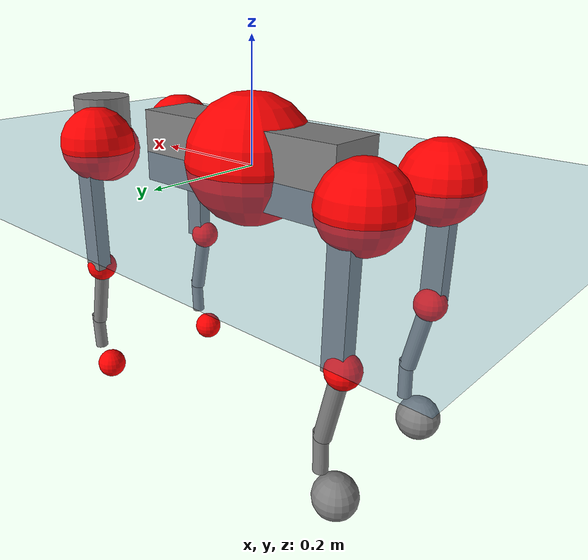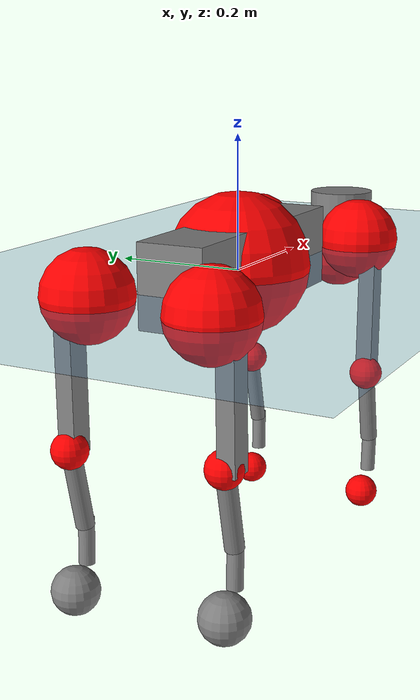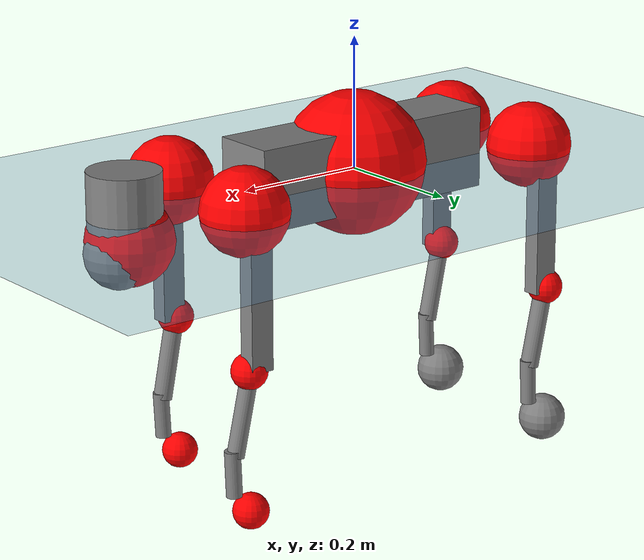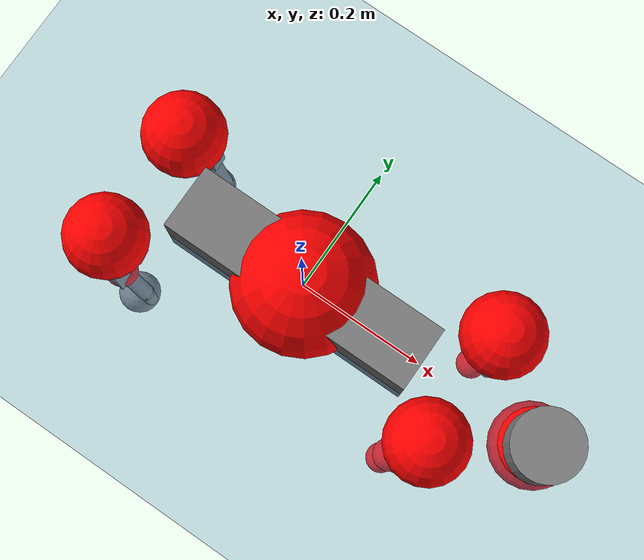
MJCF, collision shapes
<mujoco model="go2">
  <compiler angle="radian" assetdir="assets" balanceinertia="true" inertiafromgeom="false"/>

  <option timestep="0.005" density="1.2" viscosity="2e-05"/>

  <size nkey="1"/>

  <visual>
    <quality shadowsize="8192"/>
    <map shadowclip="0.5"/>
  </visual>

  <default>
    <default class="/">
      <geom contype="0" conaffinity="0" group="1" solref="-1000 -80"/>
      <site size="0.01 0.005 0.005" group="5"/>
      <general forcelimited="true" biastype="affine" gainprm="20" biasprm="0 -20 -0.5"/>
      <default class="go2">
        <joint armature="0.01" damping="0.01" frictionloss="0.2"/>
        <geom condim="1" margin="0.001"/>
        <default class="visual">
          <geom type="mesh" group="2"/>
        </default>
        <default class="collision">
          <geom group="3"/>
          <default class="foot">
            <geom size="0.022 0 0" condim="6" priority="1" friction="0.8 0.02 0.01" solimp="0.015 1 0.022"/>
          </default>
        </default>
        <default class="reward_collision_sphere">
          <geom group="5" rgba="1 0 0 1"/>
        </default>
      </default>
    </default>
  </default>

  <asset>
    <texture type="skybox" colorspace="auto" name="//unnamed_texture_0" builtin="gradient" rgb1="0.95 0.95 0.95" rgb2="0.95 0.95 0.95" width="100" height="600"/>
    <texture type="2d" colorspace="auto" name="texplane" builtin="checker" rgb1="0.345 0.575 0.748" rgb2="0.345 0.575 0.748" markrgb="1 1 1" width="512" height="512"/>
    <material name="MatPlane" class="/" texture="texplane" texuniform="true" texrepeat="2 2" specular="0.9"/>
    <material name="metal" class="/" rgba="0.9 0.95 0.95 1"/>
    <material name="black" class="/" rgba="0 0 0 1"/>
    <material name="white" class="/"/>
    <material name="gray" class="/" rgba="0.671705 0.692426 0.77427 1"/>
    <mesh name="base_0" class="/" file="base_0.obj"/>
    <mesh name="base_1" class="/" file="base_1.obj"/>
    <mesh name="base_2" class="/" file="base_2.obj"/>
    <mesh name="base_3" class="/" file="base_3.obj"/>
    <mesh name="base_4" class="/" file="base_4.obj"/>
    <mesh name="hip_0" class="/" file="hip_0.obj"/>
    <mesh name="hip_1" class="/" file="hip_1.obj"/>
    <mesh name="thigh_0" class="/" file="thigh_0.obj"/>
    <mesh name="thigh_1" class="/" file="thigh_1.obj"/>
    <mesh name="thigh_mirror_0" class="/" file="thigh_mirror_0.obj"/>
    <mesh name="thigh_mirror_1" class="/" file="thigh_mirror_1.obj"/>
    <mesh name="calf_0" class="/" file="calf_0.obj"/>
    <mesh name="calf_1" class="/" file="calf_1.obj"/>
    <mesh name="calf_mirror_0" class="/" file="calf_mirror_0.obj"/>
    <mesh name="calf_mirror_1" class="/" file="calf_mirror_1.obj"/>
    <mesh name="foot" class="/" file="foot.obj"/>
  </asset>

  <worldbody>
    <geom name="floor" class="/" size="100 100 0.125" type="plane" group="0" material="MatPlane"/>
    <light name="toplight_shadow" class="/" pos="0 0 5" dir="0.0990148 0.0990148 -0.990148" type="directional" ambient="0.04 0.04 0.04" diffuse="0.55 0.55 0.55" specular="0.12 0.12 0.12"/>
    <light name="toplight_fill" class="/" pos="0 0 5" dir="0.0990148 0.0990148 -0.990148" type="directional" castshadow="false" ambient="0.04 0.04 0.04" diffuse="0.3 0.3 0.3" specular="0.08 0.08 0.08"/>
    <body name="trunk" childclass="go2" pos="0.000729277 -3.312e-05 0.00998792" quat="1 -4.06866e-05 -5.82304e-05 7.72007e-05">
      <inertial pos="0.0292208 -0.0138355 -0.016393" quat="-0.000408559 0.713674 -0.00180973 0.700475" mass="9.16531" diaginertia="0.596005 0.0363367 0.0277175"/>
      <joint name="//unnamed_joint_0" type="free" armature="0" damping="0" frictionloss="0"/>
      <geom name="//unnamed_geom_1" class="visual" material="black" mesh="base_0"/>
      <geom name="//unnamed_geom_2" class="visual" material="black" mesh="base_1"/>
      <geom name="//unnamed_geom_3" class="visual" material="black" mesh="base_2"/>
      <geom name="//unnamed_geom_4" class="visual" material="white" mesh="base_3"/>
      <geom name="//unnamed_geom_5" class="visual" material="gray" mesh="base_4"/>
      <geom name="trunk_1" class="collision" size="0.203718 0.0506317 0.0617327" type="box"/>
      <geom name="trunk_2" class="collision" size="0.0541515 0.0487364" pos="0.408541 0 0.0100695" type="cylinder"/>
      <geom name="trunk_3" class="collision" size="0.0509024" pos="0.420009 0 -0.0604168"/>
      <geom name="//unnamed_geom_9" class="reward_collision_sphere" size="0.108303"/>
      <geom name="//unnamed_geom_10" class="reward_collision_sphere" size="0.0649818" pos="0.401373 0 -0.0453126"/>
      <site name="imu" pos="-0.0638111 0.0398296 0.0135904" size="0.0108303"/>
      <camera name="track" pos="0 -1.61734 0" quat="0.707107 0.707107 0 0" mode="trackcom"/>
      <camera name="ego_camera" pos="0.447245 0 0.0453126" quat="-0.5 -0.5 0.5 0.5"/>
      <body name="FL_hip" pos="0.277663 0.0465211 -0.00125894" quat="0.999998 -0.00156896 0.00142175 0.000245535">
        <inertial pos="0.00446579 0.00185698 0.00755435" quat="0.503029 0.492925 0.511543 0.49225" mass="0.960451" diaginertia="0.00568829 0.000239325 0.000471931"/>
        <joint name="FL_hip_joint" pos="0 0 0" axis="0.999963 -0.00777923 -0.00380368" range="-0.916086 1.06638" armature="0.00571912" damping="0" frictionloss="0.343385"/>
        <geom name="//unnamed_geom_11" class="visual" material="metal" mesh="hip_0"/>
        <geom name="//unnamed_geom_12" class="visual" material="gray" mesh="hip_1"/>
        <geom name="//unnamed_geom_13" class="collision" size="0.0498194 0.0216606" pos="0 0.0646934 0" quat="0.707107 0.707107 0 0" type="cylinder"/>
        <geom name="//unnamed_geom_14" class="reward_collision_sphere" size="0.0649818" pos="0 0.0566067 0"/>
        <body name="FL_thigh" pos="-0.00171904 0.079502 -0.00655969" quat="1 -0.000146252 0.000240803 7.75317e-05">
          <inertial pos="-0.00499306 -0.0186341 -0.0250976" quat="0.829033 0.0841672 -0.0221948 0.552384" mass="1.60796" diaginertia="0.0346483 0.00201864 0.00124472"/>
          <joint name="FL_thigh_joint" pos="0 0 0" axis="0.00565389 0.999418 0.0336278" stiffness="0.0237651" range="-1.38672 3.36011" armature="0.00807964" damping="0.0125114" frictionloss="0.199147"/>
          <geom name="//unnamed_geom_15" class="visual" material="metal" mesh="thigh_0"/>
          <geom name="//unnamed_geom_16" class="visual" material="gray" mesh="thigh_1"/>
          <geom name="//unnamed_geom_17" class="collision" size="0.115343 0.0132671 0.0184115" pos="0 0 -0.10724" quat="0.707107 0 0.707107 0" type="box"/>
          <body name="FL_calf" pos="0.00656914 -0.00980202 -0.225168" quat="0.999978 -0.00145853 -0.00585419 0.00278735">
            <inertial pos="0.0100758 -0.000151691 -0.143354" quat="0.708744 0.00115731 -0.00702041 0.70543" mass="0.371181" diaginertia="0.00883088 0.000522175 6.13726e-05"/>
            <joint name="FL_calf_joint" pos="0 0 0" axis="0.0191109 0.999769 0.00979304" range="-2.76493 -0.778337" armature="0.0147728" damping="0" frictionloss="0.325102"/>
            <geom name="//unnamed_geom_18" class="visual" material="gray" mesh="calf_0"/>
            <geom name="//unnamed_geom_19" class="visual" material="black" mesh="calf_1"/>
            <geom name="FL_calf0" class="collision" size="0.0129964 0.0649818" pos="0.0114678 0 -0.0604168" quat="0.994493 0 -0.104807 0" type="cylinder"/>
            <geom name="//unnamed_geom_21" class="collision" size="0.0119133 0.0351985" pos="0.0286695 0 -0.149028" quat="0.999688 0 0.0249974 0" type="cylinder"/>
            <geom name="//unnamed_geom_22" class="visual" pos="0 0 -0.21448" quat="1 0 0 0" material="black" mesh="foot"/>
            <geom name="FL_foot" class="foot" size="0.0136413" pos="-0.00286695 0 -0.21448"/>
            <geom name="//unnamed_geom_24" class="reward_collision_sphere" size="0.0270758"/>
            <geom name="//unnamed_geom_25" class="reward_collision_sphere" size="0.0270758" pos="-0.00286695 0 -0.21448"/>
            <site name="FL_foot" class="foot" pos="-0.00286695 0 -0.21448" size="0.0108303"/>
          </body>
        </body>
      </body>
      <body name="FR_hip" pos="0.271996 -0.0292121 0.000916256" quat="0.999984 -0.000586149 0.000860232 0.00562918">
        <inertial pos="-0.00790218 -0.00401829 0.00264556" quat="0.498772 0.507599 0.499744 0.493787" mass="0.937912" diaginertia="0.00628642 0.00026081 0.00048336"/>
        <joint name="FR_hip_joint" pos="0 0 0" axis="0.999995 0.00317367 -0.000576751" range="-1.26493 1.31104" armature="0.0107513" damping="0" frictionloss="0.314695"/>
        <geom name="//unnamed_geom_26" class="visual" pos="0 -1.72733e-09 -7.40888e-08" quat="4.63268e-05 1 0 0" material="metal" mesh="hip_0"/>
        <geom name="//unnamed_geom_27" class="visual" pos="0 -2.80021e-09 1.8325e-07" quat="4.63268e-05 1 0 0" material="gray" mesh="hip_1"/>
        <geom name="//unnamed_geom_28" class="collision" size="0.0498194 0.0216606" pos="0 -0.0646934 0" quat="0.707107 0.707107 0 0" type="cylinder"/>
        <geom name="//unnamed_geom_29" class="reward_collision_sphere" size="0.0649818" pos="0 -0.0566067 0"/>
        <body name="FR_thigh" pos="-0.0146116 -0.085375 -0.000503432" quat="0.999997 0.0020449 -0.000633758 0.000934456">
          <inertial pos="-0.00518016 0.020301 -0.0328653" quat="0.549557 -0.0183507 0.0880673 0.830599" mass="1.29904" diaginertia="0.0341375 0.00177698 0.00070985"/>
          <joint name="FR_thigh_joint" pos="0 0 0" axis="0.0231888 -0.997701 -0.0636814" range="-3.79355 1.83559" armature="0.010923" damping="0.0580149" frictionloss="0.257801"/>
          <geom name="//unnamed_geom_30" class="visual" material="metal" mesh="thigh_mirror_0"/>
          <geom name="//unnamed_geom_31" class="visual" material="gray" mesh="thigh_mirror_1"/>
          <geom name="//unnamed_geom_32" class="collision" size="0.115343 0.0132671 0.0184115" pos="0 0 -0.10724" quat="0.707107 0 0.707107 0" type="box"/>
          <body name="FR_calf" pos="-0.0135804 -0.00343712 -0.222065" quat="0.999999 -0.00154501 -0.000257109 -0.000139306">
            <inertial pos="0.0150026 0.0042839 -0.15684" quat="0.707395 -0.0142311 -0.0188755 0.706423" mass="0.370339" diaginertia="0.00815932 0.000512364 5.56584e-05"/>
            <joint name="FR_calf_joint" pos="0 0 0" axis="-0.0755336 -0.997075 0.0116791" stiffness="0.0281802" range="0.747491 2.95615" armature="0.0118136" damping="0" frictionloss="0.38088"/>
            <geom name="//unnamed_geom_33" class="visual" material="gray" mesh="calf_mirror_0"/>
            <geom name="//unnamed_geom_34" class="visual" material="black" mesh="calf_mirror_1"/>
            <geom name="FR_calf0" class="collision" size="0.0140794 0.0649818" pos="0.0143348 0 -0.0604168" quat="0.995004 0 -0.0998334 0" type="cylinder"/>
            <geom name="//unnamed_geom_36" class="collision" size="0.0119133 0.0351985" pos="0.0286695 0 -0.149028" quat="0.999688 0 0.0249974 0" type="cylinder"/>
            <geom name="//unnamed_geom_37" class="visual" pos="0 0 -0.21448" quat="1 0 0 0" material="black" mesh="foot"/>
            <geom name="FR_foot" class="foot" size="0.0206265" pos="-0.00286695 0 -0.21448"/>
            <geom name="//unnamed_geom_39" class="reward_collision_sphere" size="0.0270758"/>
            <geom name="//unnamed_geom_40" class="reward_collision_sphere" size="0.0270758" pos="-0.00286695 0 -0.21448"/>
            <site name="FR_foot" class="foot" pos="-0.00286695 0 -0.21448" size="0.0108303"/>
          </body>
        </body>
      </body>
      <body name="RL_hip" pos="-0.27363 0.027357 -0.00179468" quat="1 0.000830119 -0.00014369 -0.000393895">
        <inertial pos="0.0150553 0.0134592 -0.002934" quat="0.473064 0.495793 0.462696 0.562416" mass="1.02588" diaginertia="0.00498399 0.000181938 0.00053745"/>
        <joint name="RL_hip_joint" pos="0 0 0" axis="-0.99874 -0.0411229 -0.0287629" stiffness="0.0530601" range="-1.12303 1.19306" armature="0.0113828" damping="0.0548586" frictionloss="0.134674"/>
        <geom name="//unnamed_geom_41" class="visual" pos="-3.71574e-09 0 -7.28372e-07" quat="4.63268e-05 0 1 0" material="metal" mesh="hip_0"/>
        <geom name="//unnamed_geom_42" class="visual" pos="-6.02367e-09 0 -6.45962e-07" quat="4.63268e-05 0 1 0" material="gray" mesh="hip_1"/>
        <geom name="//unnamed_geom_43" class="collision" size="0.0498194 0.0216606" pos="0 0.0646934 0" quat="0.707107 0.707107 0 0" type="cylinder"/>
        <geom name="//unnamed_geom_44" class="reward_collision_sphere" size="0.0649818" pos="0 0.0566067 0"/>
        <body name="RL_thigh" pos="0.00119895 0.0892873 -0.00451903" quat="0.999993 0.000595012 -0.000130505 -0.00382134">
          <inertial pos="8.04868e-06 -0.00819344 -0.0329974" quat="0.813856 0.0798517 -0.0122298 0.575423" mass="1.3907" diaginertia="0.0310909 0.00185042 0.0006886"/>
          <joint name="RL_thigh_joint" pos="0 0 0" axis="-0.0110221 0.999841 -0.0139963" range="-0.542363 4.55363" armature="0.0110755" damping="0.0323542" frictionloss="0.227942"/>
          <geom name="//unnamed_geom_45" class="visual" material="metal" mesh="thigh_0"/>
          <geom name="//unnamed_geom_46" class="visual" material="gray" mesh="thigh_1"/>
          <geom name="//unnamed_geom_47" class="collision" size="0.115343 0.0132671 0.0184115" pos="0 0 -0.10724" quat="0.707107 0 0.707107 0" type="box"/>
          <body name="RL_calf" pos="-0.0105932 0.000440773 -0.216241" quat="0.999983 -0.00106303 -0.00466352 -0.0032278">
            <inertial pos="-0.00183493 0.00479819 -0.132828" quat="0.711836 0.00026549 -0.00449022 0.702331" mass="0.284633" diaginertia="0.00768922 0.000340043 3.54762e-05"/>
            <joint name="RL_calf_joint" pos="0 0 0" axis="-0.0395208 0.999028 0.0195365" stiffness="0.00169912" range="-2.74345 -0.521234" armature="0.0108559" damping="0" frictionloss="0.138596"/>
            <geom name="//unnamed_geom_48" class="visual" material="gray" mesh="calf_0"/>
            <geom name="//unnamed_geom_49" class="visual" material="black" mesh="calf_1"/>
            <geom name="RL_calf0" class="collision" size="0.0140794 0.0649818" pos="0.0143348 0 -0.0604168" quat="0.995004 0 -0.0998334 0" type="cylinder"/>
            <geom name="//unnamed_geom_51" class="collision" size="0.0119133 0.0351985" pos="0.0286695 0 -0.149028" quat="0.999688 0 0.0249974 0" type="cylinder"/>
            <geom name="//unnamed_geom_52" class="visual" pos="0 0 -0.21448" quat="1 0 0 0" material="black" mesh="foot"/>
            <geom name="RL_foot" class="foot" size="0.0360596" pos="-0.00286695 0 -0.21448"/>
            <geom name="//unnamed_geom_54" class="reward_collision_sphere" size="0.0270758"/>
            <geom name="//unnamed_geom_55" class="reward_collision_sphere" size="0.0270758" pos="-0.00286695 0 -0.21448"/>
            <site name="RL_foot" class="foot" pos="-0.00286695 0 -0.21448" size="0.0108303"/>
          </body>
        </body>
      </body>
      <body name="RR_hip" pos="-0.277792 -0.0485932 -0.00630046" quat="0.999981 -0.00464012 0.000308412 -0.00399025">
        <inertial pos="0.00414013 -0.00885005 0.00659565" quat="0.560804 0.491057 0.470068 0.472651" mass="1.01351" diaginertia="0.00530919 0.000250969 0.000547256"/>
        <joint name="RR_hip_joint" pos="0 0 0" axis="-0.999641 -0.0267006 0.00207967" stiffness="0.0236428" range="-0.806851 0.969122" armature="0.0181371" damping="0.0220686" frictionloss="0.120336"/>
        <geom name="//unnamed_geom_56" class="visual" pos="3.69411e-09 -1.72733e-09 -6.54283e-07" quat="2.14617e-09 4.63268e-05 4.63268e-05 -1" material="metal" mesh="hip_0"/>
        <geom name="//unnamed_geom_57" class="visual" pos="6.07717e-09 -2.80021e-09 -8.29212e-07" quat="2.14617e-09 4.63268e-05 4.63268e-05 -1" material="gray" mesh="hip_1"/>
        <geom name="//unnamed_geom_58" class="collision" size="0.0498194 0.0216606" pos="0 -0.0646934 0" quat="0.707107 0.707107 0 0" type="cylinder"/>
        <geom name="//unnamed_geom_59" class="reward_collision_sphere" size="0.0649818" pos="0 -0.0566067 0"/>
        <body name="RR_thigh" pos="0.00234072 -0.0811653 0.0138681" quat="0.999999 -0.000372353 0.000637191 0.00072255">
          <inertial pos="-0.00522421 0.00262092 -0.0411327" quat="0.527547 -0.0668372 0.0959357 0.841441" mass="1.7212" diaginertia="0.0433589 0.00240584 0.00110522"/>
          <joint name="RR_thigh_joint" pos="0 0 0" axis="-0.03581 -0.998969 0.0278868" range="-4.66505 0.790974" armature="0.00186384" damping="0" frictionloss="0.162762"/>
          <geom name="//unnamed_geom_60" class="visual" material="metal" mesh="thigh_mirror_0"/>
          <geom name="//unnamed_geom_61" class="visual" material="gray" mesh="thigh_mirror_1"/>
          <geom name="//unnamed_geom_62" class="collision" size="0.115343 0.0132671 0.0184115" pos="0 0 -0.10724" quat="0.707107 0 0.707107 0" type="box"/>
          <body name="RR_calf" pos="-0.00146435 0.0109581 -0.217271" quat="0.999987 0.00386649 -0.00319456 0.00117473">
            <inertial pos="0.00168378 4.39852e-05 -0.143716" quat="0.732251 -0.0435241 0.0414602 0.678377" mass="0.389251" diaginertia="0.00946704 0.000586733 4.85184e-05"/>
            <joint name="RR_calf_joint" pos="0 0 0" axis="-0.0647807 -0.997899 -0.000892813" range="0.6148 2.47024" armature="0.0111267" damping="0" frictionloss="0.189487"/>
            <geom name="//unnamed_geom_63" class="visual" material="gray" mesh="calf_mirror_0"/>
            <geom name="//unnamed_geom_64" class="visual" material="black" mesh="calf_mirror_1"/>
            <geom name="RR_calf0" class="collision" size="0.0140794 0.0649818" pos="0.0143348 0 -0.0604168" quat="0.995004 0 -0.0998334 0" type="cylinder"/>
            <geom name="//unnamed_geom_66" class="collision" size="0.0119133 0.0351985" pos="0.0286695 0 -0.149028" quat="0.999688 0 0.0249974 0" type="cylinder"/>
            <geom name="//unnamed_geom_67" class="visual" pos="0 0 -0.21448" quat="1 0 0 0" material="black" mesh="foot"/>
            <geom name="RR_foot" class="foot" size="0.037377" pos="-0.00286695 0 -0.21448"/>
            <geom name="//unnamed_geom_69" class="reward_collision_sphere" size="0.0270758"/>
            <geom name="//unnamed_geom_70" class="reward_collision_sphere" size="0.0270758" pos="-0.00286695 0 -0.21448"/>
            <site name="RR_foot" class="foot" pos="-0.00286695 0 -0.21448" size="0.0108303"/>
          </body>
        </body>
      </body>
    </body>
  </worldbody>

  <contact>
    <pair class="/" geom1="floor" geom2="FL_foot" name="//unnamed_contact_0"/>
    <pair class="/" geom1="floor" geom2="FR_foot" name="//unnamed_contact_1"/>
    <pair class="/" geom1="floor" geom2="RL_foot" name="//unnamed_contact_2"/>
    <pair class="/" geom1="floor" geom2="RR_foot" name="//unnamed_contact_3"/>
  </contact>

  <actuator>
    <general name="FL_hip" class="/" joint="FL_hip_joint" forcerange="-33.467 33.467" gainprm="14.3459" biasprm="0 -14.3459 -0.453854"/>
    <general name="FL_thigh" class="/" joint="FL_thigh_joint" forcerange="-40.1599 40.1599" gainprm="14.3459" biasprm="0 -14.3459 -0.453854"/>
    <general name="FL_calf" class="/" joint="FL_calf_joint" forcerange="-41.5049 41.5049" gainprm="14.3459" biasprm="0 -14.3459 -0.453854"/>
    <general name="FR_hip" class="/" joint="FR_hip_joint" forcerange="-30.3203 30.3203" gainprm="14.3459" biasprm="0 -14.3459 -0.453854"/>
    <general name="FR_thigh" class="/" joint="FR_thigh_joint" forcerange="-20.3619 20.3619" gainprm="14.3459" biasprm="0 -14.3459 -0.453854"/>
    <general name="FR_calf" class="/" joint="FR_calf_joint" forcerange="-61.9592 61.9592" gainprm="14.3459" biasprm="0 -14.3459 -0.453854"/>
    <general name="RL_hip" class="/" joint="RL_hip_joint" forcerange="-16.6922 16.6922" gainprm="14.3459" biasprm="0 -14.3459 -0.453854"/>
    <general name="RL_thigh" class="/" joint="RL_thigh_joint" forcerange="-25.8157 25.8157" gainprm="14.3459" biasprm="0 -14.3459 -0.453854"/>
    <general name="RL_calf" class="/" joint="RL_calf_joint" forcerange="-63.379 63.379" gainprm="14.3459" biasprm="0 -14.3459 -0.453854"/>
    <general name="RR_hip" class="/" joint="RR_hip_joint" forcerange="-39.9188 39.9188" gainprm="14.3459" biasprm="0 -14.3459 -0.453854"/>
    <general name="RR_thigh" class="/" joint="RR_thigh_joint" forcerange="-28.5767 28.5767" gainprm="14.3459" biasprm="0 -14.3459 -0.453854"/>
    <general name="RR_calf" class="/" joint="RR_calf_joint" forcerange="-55.8454 55.8454" gainprm="14.3459" biasprm="0 -14.3459 -0.453854"/>
  </actuator>

  <sensor>
    <gyro site="imu" name="imu_angular_velocity"/>
    <velocimeter site="imu" name="imu_linear_velocity"/>
    <framelinvel objtype="site" objname="FL_foot" name="FL_foot_global_linear_velocity"/>
    <framelinvel objtype="site" objname="FR_foot" name="FR_foot_global_linear_velocity"/>
    <framelinvel objtype="site" objname="RL_foot" name="RL_foot_global_linear_velocity"/>
    <framelinvel objtype="site" objname="RR_foot" name="RR_foot_global_linear_velocity"/>
  </sensor>

  <keyframe>
    <key name="home" qpos="0 0 0.325 1 0 0 0 0.1 0.8 -1.5 -0.1 -0.8 1.5 -0.1 0.8 -1.5 0.1 -0.8 1.5"/>
  </keyframe>
</mujoco>
